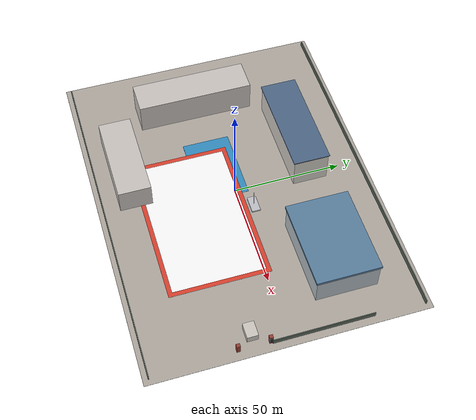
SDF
<?xml version="1.0" ?>
<sdf version="1.8">
  <model name="guandong_elementary_school">
    <static>true</static>
    <link name="school_link">

      <!-- ==================== 物理碰撞剛體 (校舍主體、體育館與校門守衛室) ==================== -->
      <!-- 1. 行政與教學大樓主棟 (4層樓, 48m x 16m x 15m) -->
      <collision name="admin_bldg_col">
        <pose>-20.0 35.0 7.5 0 0 0</pose>
        <geometry><box><size>48.0 16.0 15.0</size></box></geometry>
      </collision>

      <!-- 2. 西側教學大樓 (4層樓, 54m x 15m x 15m) -->
      <collision name="west_wing_col">
        <pose>-55.0 -5.0 7.5 0 0 1.5708</pose>
        <geometry><box><size>54.0 15.0 15.0</size></box></geometry>
      </collision>

      <!-- 3. 南側教學大樓 (3層樓, 42m x 15m x 12m) -->
      <collision name="south_wing_col">
        <pose>-25.0 -45.0 6.0 0 0 0</pose>
        <geometry><box><size>42.0 15.0 12.0</size></box></geometry>
      </collision>

      <!-- 4. 多功能活動中心 / 室內體育館 (挑高13m, 40m x 28m x 13m) -->
      <collision name="gym_col">
        <pose>45.0 30.0 6.5 0 0 0</pose>
        <geometry><box><size>40.0 28.0 13.0</size></box></geometry>
      </collision>

      <!-- 5. 關東路正門警衛傳達室 (1層樓, 7m x 5m x 3.5m) -->
      <collision name="gatehouse_col">
        <pose>72.0 -15.0 1.75 0 0 0</pose>
        <geometry><box><size>7.0 5.0 3.5</size></box></geometry>
      </collision>

      <!-- ==================== 校園大底地坪 (Campus Ground Surface 165m x 125m) ==================== -->
      <visual name="campus_ground_vis">
        <pose>0 0 0.04 0 0 0</pose>
        <geometry><box><size>165.0 125.0 0.08</size></box></geometry>
        <material>
          <ambient>0.60 0.58 0.55 1</ambient>
          <diffuse>0.68 0.65 0.62 1</diffuse>
        </material>
      </visual>

      <!-- ==================== 操場運動場與跑道系統 (200m Athletic Track & Field) ==================== -->
      <!-- 200m 紅色 PU 橢圓跑道區 (Red Tartan Running Track: 72m x 46m) -->
      <visual name="track_oval_vis">
        <pose>10.0 -20.0 0.085 0 0 0</pose>
        <geometry><box><size>72.0 46.0 0.01</size></box></geometry>
        <material>
          <ambient>0.75 0.20 0.15 1</ambient>
          <diffuse>0.85 0.25 0.18 1</diffuse>
        </material>
      </visual>

      <!-- 操場中央天然草皮足球場/多功能活動草坪 (Center Grass Lawn: 56m x 30m) -->
      <visual name="center_pitch_vis">
        <pose>10.0 -20.0 0.092 0 0 0</pose>
        <geometry><box><size>56.0 30.0 0.01</size></box></geometry>
        <material>
          <ambient>0.18 0.58 0.22 1</ambient>
          <diffuse>0.22 0.65 0.25 1</diffuse>
        </material>
      </visual>

      <!-- 跑道白色分道標線 (White Lane Striping) -->
      <visual name="track_line_outer">
        <pose>10.0 -20.0 0.095 0 0 0</pose>
        <geometry><box><size>68.0 42.0 0.005</size></box></geometry>
        <material><ambient>0.95 0.95 0.95 1</ambient><diffuse>0.98 0.98 0.98 1</diffuse></material>
      </visual>

      <!-- 戶外綜合籃球與排球場 (Outdoor Courts: 34m x 22m 藍綠雙色耐磨面層) -->
      <visual name="court_vis">
        <pose>-15.0 -5.0 0.085 0 0 0</pose>
        <geometry><box><size>34.0 22.0 0.01</size></box></geometry>
        <material>
          <ambient>0.15 0.45 0.65 1</ambient>
          <diffuse>0.20 0.55 0.75 1</diffuse>
        </material>
      </visual>

      <!-- ==================== 校舍建築群視覺呈現 (Classroom & Admin Complex) ==================== -->
      <!-- 行政大樓主棟 (米白搭配深灰磚) -->
      <visual name="admin_bldg_vis">
        <pose>-20.0 35.0 7.5 0 0 0</pose>
        <geometry><box><size>48.0 16.0 15.0</size></box></geometry>
        <material>
          <ambient>0.75 0.73 0.70 1</ambient>
          <diffuse>0.82 0.80 0.77 1</diffuse>
        </material>
      </visual>
      <visual name="admin_roof_trim">
        <pose>-20.0 35.0 15.2 0 0 0</pose>
        <geometry><box><size>49.0 17.0 0.4</size></box></geometry>
        <material><ambient>0.25 0.35 0.45 1</ambient><diffuse>0.30 0.40 0.52 1</diffuse></material>
      </visual>

      <!-- 西側教學大樓 (米白洗石子) -->
      <visual name="west_wing_vis">
        <pose>-55.0 -5.0 7.5 0 0 1.5708</pose>
        <geometry><box><size>54.0 15.0 15.0</size></box></geometry>
        <material>
          <ambient>0.72 0.70 0.68 1</ambient>
          <diffuse>0.78 0.76 0.74 1</diffuse>
        </material>
      </visual>

      <!-- 南側教學大樓 -->
      <visual name="south_wing_vis">
        <pose>-25.0 -45.0 6.0 0 0 0</pose>
        <geometry><box><size>42.0 15.0 12.0</size></box></geometry>
        <material>
          <ambient>0.72 0.70 0.68 1</ambient>
          <diffuse>0.78 0.76 0.74 1</diffuse>
        </material>
      </visual>

      <!-- 多功能活動中心 / 體育館 (弧頂鋼構造型) -->
      <visual name="gym_vis">
        <pose>45.0 30.0 6.5 0 0 0</pose>
        <geometry><box><size>40.0 28.0 13.0</size></box></geometry>
        <material>
          <ambient>0.65 0.68 0.70 1</ambient>
          <diffuse>0.70 0.74 0.76 1</diffuse>
        </material>
      </visual>
      <visual name="gym_roof_barrel">
        <pose>45.0 30.0 13.5 0 0 0</pose>
        <geometry><box><size>41.0 29.0 1.2</size></box></geometry>
        <material><ambient>0.30 0.45 0.55 1</ambient><diffuse>0.35 0.50 0.62 1</diffuse></material>
      </visual>

      <!-- ==================== 關東路校門與入口意象 (Main Entrance on Guandong Rd) ==================== -->
      <!-- 校門口警衛傳達室 -->
      <visual name="gatehouse_vis">
        <pose>72.0 -15.0 1.75 0 0 0</pose>
        <geometry><box><size>7.0 5.0 3.5</size></box></geometry>
        <material><ambient>0.75 0.73 0.70 1</ambient><diffuse>0.80 0.78 0.75 1</diffuse></material>
      </visual>

      <!-- 校門立柱與經典紅磚大理石銘牌 (Guandong Elementary School Marble Pillars) -->
      <visual name="gate_pillar_north">
        <pose>78.0 -8.0 2.2 0 0 0</pose>
        <geometry><box><size>1.6 1.6 4.4</size></box></geometry>
        <material><ambient>0.50 0.20 0.15 1</ambient><diffuse>0.60 0.25 0.20 1</diffuse></material>
      </visual>
      <visual name="gate_pillar_south">
        <pose>78.0 -22.0 2.2 0 0 0</pose>
        <geometry><box><size>1.6 1.6 4.4</size></box></geometry>
        <material><ambient>0.50 0.20 0.15 1</ambient><diffuse>0.60 0.25 0.20 1</diffuse></material>
      </visual>
      <visual name="school_name_plaque">
        <pose>78.85 -8.0 2.4 0 0 0</pose>
        <geometry><box><size>0.1 1.4 3.0</size></box></geometry>
        <material><ambient>0.1 0.1 0.12 1</ambient><diffuse>0.15 0.15 0.18 1</diffuse><emissive>0.2 0.2 0.05 1</emissive></material>
      </visual>

      <!-- 校園穿透式鋼飾綠化圍牆 (Perimeter Fence) -->
      <visual name="fence_east">
        <pose>79.0 15.0 1.2 0 0 0</pose>
        <geometry><box><size>0.4 45.0 2.4</size></box></geometry>
        <material><ambient>0.3 0.35 0.3 1</ambient><diffuse>0.35 0.40 0.35 1</diffuse></material>
      </visual>
      <visual name="fence_north">
        <pose>0 60.0 1.2 0 0 0</pose>
        <geometry><box><size>160.0 0.4 2.4</size></box></geometry>
        <material><ambient>0.3 0.35 0.3 1</ambient><diffuse>0.35 0.40 0.35 1</diffuse></material>
      </visual>
      <visual name="fence_south">
        <pose>0 -60.0 1.2 0 0 0</pose>
        <geometry><box><size>160.0 0.4 2.4</size></box></geometry>
        <material><ambient>0.3 0.35 0.3 1</ambient><diffuse>0.35 0.40 0.35 1</diffuse></material>
      </visual>

      <!-- 升旗台與不鏽鋼旗桿 (Flagpole Stand) -->
      <visual name="flag_platform">
        <pose>10.0 6.0 0.4 0 0 0</pose>
        <geometry><box><size>8.0 4.0 0.8</size></box></geometry>
        <material><ambient>0.7 0.7 0.72 1</ambient><diffuse>0.75 0.75 0.78 1</diffuse></material>
      </visual>
      <visual name="flagpole_main">
        <pose>10.0 6.0 6.0 0 0 0</pose>
        <geometry><cylinder><radius>0.08</radius><length>12.0</length></cylinder></geometry>
        <material><ambient>0.85 0.85 0.9 1</ambient><diffuse>0.92 0.92 0.95 1</diffuse></material>
      </visual>

    </link>
  </model>
</sdf>
